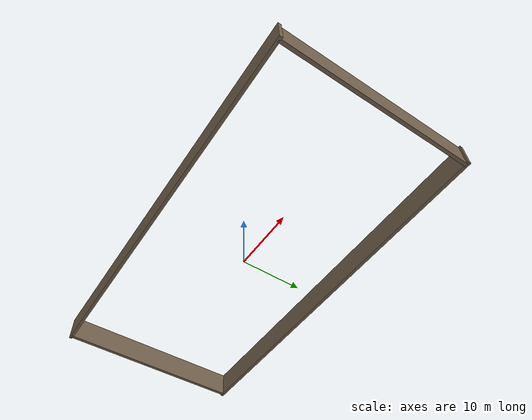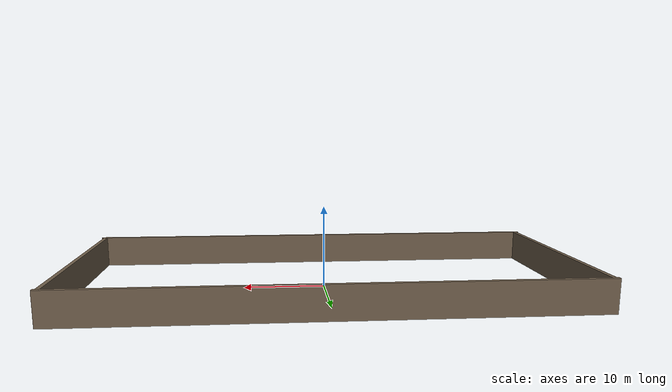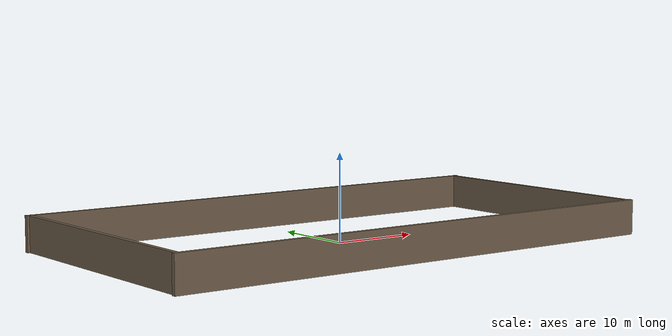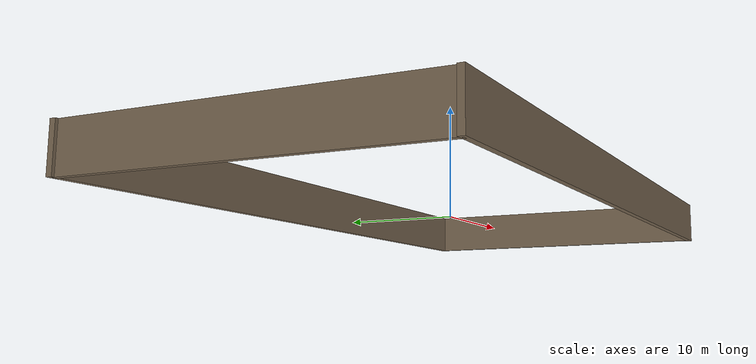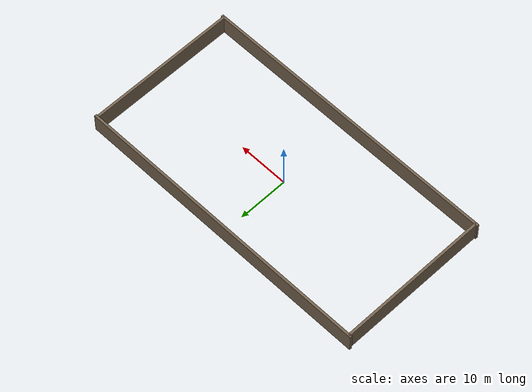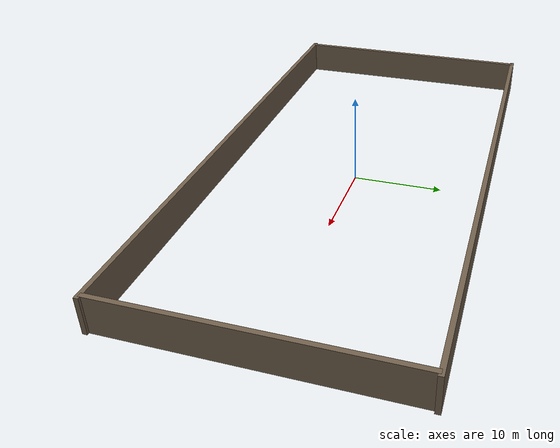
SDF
<?xml version="1.0"?>
<sdf version="1.7">
  <model name="map_perimeter">
    <static>true</static>

    <!-- West wall: x = -30, spans full Y -->
    <link name="west">
      <collision name="collision">
        <pose>0 0 2 0 0 0</pose>
        <geometry>
          <box>
            <size>0.5 30 4</size>
          </box>
        </geometry>
      </collision>
      <visual name="visual">
        <pose>0 0 2 0 0 0</pose>
        <cast_shadows>false</cast_shadows>
        <geometry>
          <box>
            <size>0.5 30 4</size>
          </box>
        </geometry>
        <material>
          <ambient>0.35 0.30 0.25 1</ambient>
          <diffuse>0.45 0.38 0.30 1</diffuse>
        </material>
      </visual>
      <pose>-30 0 0 0 0 0</pose>
    </link>

    <!-- East wall: x = +30, spans full Y -->
    <link name="east">
      <collision name="collision">
        <pose>0 0 2 0 0 0</pose>
        <geometry>
          <box>
            <size>0.5 30 4</size>
          </box>
        </geometry>
      </collision>
      <visual name="visual">
        <pose>0 0 2 0 0 0</pose>
        <cast_shadows>false</cast_shadows>
        <geometry>
          <box>
            <size>0.5 30 4</size>
          </box>
        </geometry>
        <material>
          <ambient>0.35 0.30 0.25 1</ambient>
          <diffuse>0.45 0.38 0.30 1</diffuse>
        </material>
      </visual>
      <pose>30 0 0 0 0 0</pose>
    </link>

    <!-- South wall: y = -15; 61 m long so corners seal against east/west -->
    <link name="south">
      <collision name="collision">
        <pose>0 0 2 0 0 0</pose>
        <geometry>
          <box>
            <size>61 0.5 4</size>
          </box>
        </geometry>
      </collision>
      <visual name="visual">
        <pose>0 0 2 0 0 0</pose>
        <cast_shadows>false</cast_shadows>
        <geometry>
          <box>
            <size>61 0.5 4</size>
          </box>
        </geometry>
        <material>
          <ambient>0.35 0.30 0.25 1</ambient>
          <diffuse>0.45 0.38 0.30 1</diffuse>
        </material>
      </visual>
      <pose>0 -15 0 0 0 0</pose>
    </link>

    <!-- North wall: y = +15 -->
    <link name="north">
      <collision name="collision">
        <pose>0 0 2 0 0 0</pose>
        <geometry>
          <box>
            <size>61 0.5 4</size>
          </box>
        </geometry>
      </collision>
      <visual name="visual">
        <pose>0 0 2 0 0 0</pose>
        <cast_shadows>false</cast_shadows>
        <geometry>
          <box>
            <size>61 0.5 4</size>
          </box>
        </geometry>
        <material>
          <ambient>0.35 0.30 0.25 1</ambient>
          <diffuse>0.45 0.38 0.30 1</diffuse>
        </material>
      </visual>
      <pose>0 15 0 0 0 0</pose>
    </link>
  </model>
</sdf>
